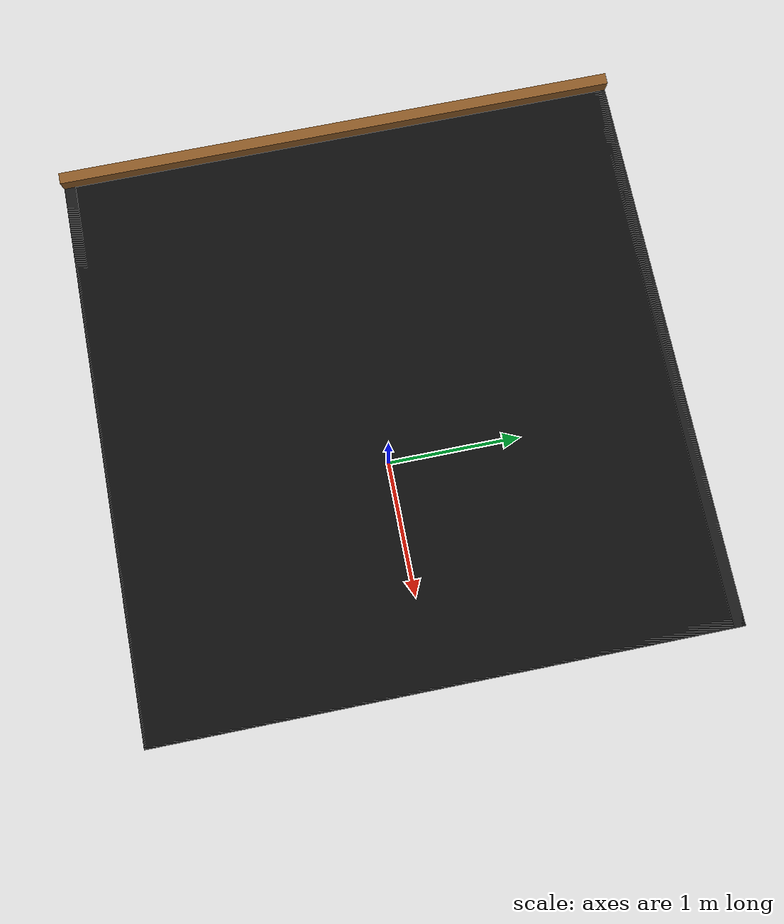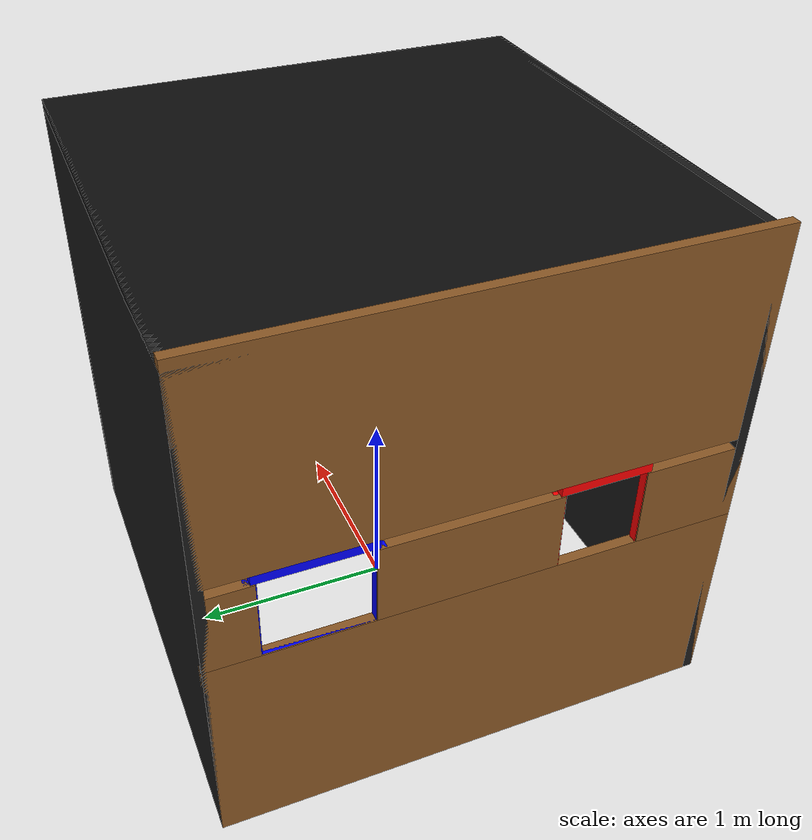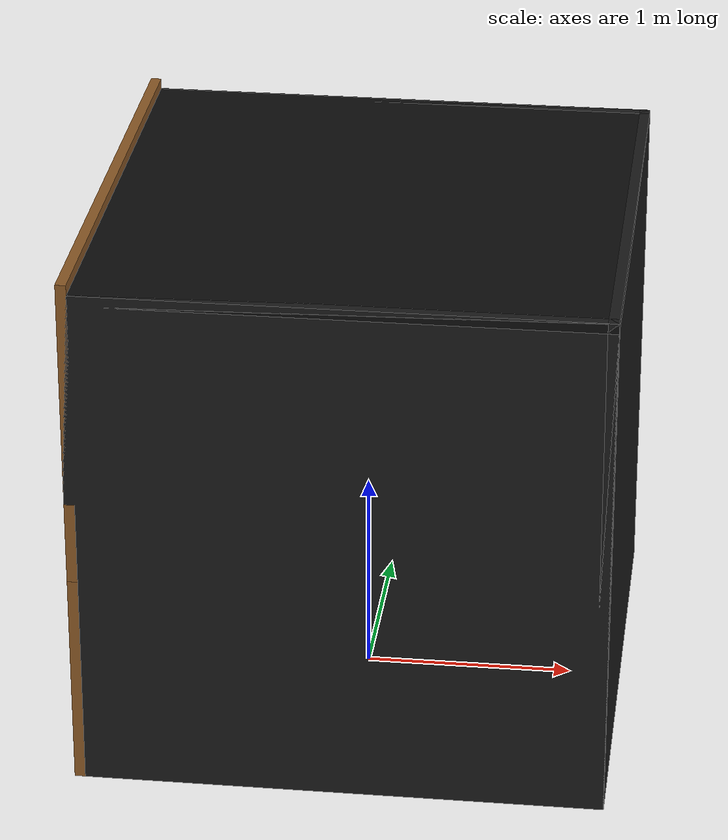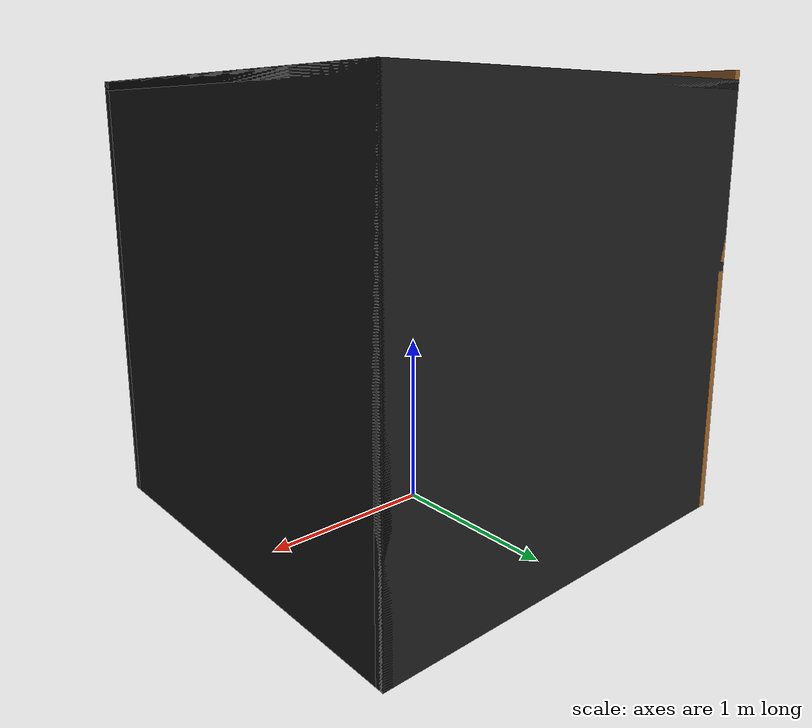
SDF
<?xml version="1.0" ?>
<sdf version="1.6">
  <model name="dark_room">
    <static>true</static>

    <!-- ==================== FRONT WALL (with windows) ==================== -->
    <!-- Wall is at local x = -1.25, windows face +x direction -->

    <!-- Bottom strip: full width, below both windows -->
    <link name="front_bottom">
      <pose>-1.225 0 0.525 0 0 0</pose>
      <visual name="vis">
        <geometry><box><size>0.05 2.5 1.05</size></box></geometry>
        <material><ambient>0.55 0.35 0.15 1</ambient><diffuse>0.55 0.35 0.15 1</diffuse></material>
      </visual>
      <collision name="col">
        <geometry><box><size>0.05 2.5 1.05</size></box></geometry>
      </collision>
    </link>

    <!-- Top strip: full width, above both windows -->
    <link name="front_top">
      <pose>-1.225 0 2.025 0 0 0</pose>
      <visual name="vis">
        <geometry><box><size>0.05 2.5 1.05</size></box></geometry>
        <material><ambient>0.55 0.35 0.15 1</ambient><diffuse>0.55 0.35 0.15 1</diffuse></material>
      </visual>
      <collision name="col">
        <geometry><box><size>0.05 2.5 1.05</size></box></geometry>
      </collision>
    </link>

    <!-- Left panel: solid, left of red window -->
    <!-- Red window spans y: -0.75 to -0.35, width = 0.40m -->
    <link name="front_left">
      <pose>-1.225 -1.0 1.25 0 0 0</pose>
      <visual name="vis">
        <geometry><box><size>0.05 0.5 0.40</size></box></geometry>
        <material><ambient>0.55 0.35 0.15 1</ambient><diffuse>0.55 0.35 0.15 1</diffuse></material>
      </visual>
      <collision name="col">
        <geometry><box><size>0.05 0.5 0.40</size></box></geometry>
      </collision>
    </link>

    <!-- Middle panel: between red and blue windows -->
    <!-- Between y=-0.35 and y=0.50, width = 0.85m -->
    <link name="front_middle">
      <pose>-1.225 0.075 1.25 0 0 0</pose>
      <visual name="vis">
        <geometry><box><size>0.05 0.85 0.40</size></box></geometry>
        <material><ambient>0.55 0.35 0.15 1</ambient><diffuse>0.55 0.35 0.15 1</diffuse></material>
      </visual>
      <collision name="col">
        <geometry><box><size>0.05 0.85 0.40</size></box></geometry>
      </collision>
    </link>

    <!-- Right panel: right of blue window -->
    <!-- Blue window spans y: 0.50 to 1.00, width = 0.50m -->
    <link name="front_right">
      <pose>-1.225 1.125 1.25 0 0 0</pose>
      <visual name="vis">
        <geometry><box><size>0.05 0.25 0.40</size></box></geometry>
        <material><ambient>0.55 0.35 0.15 1</ambient><diffuse>0.55 0.35 0.15 1</diffuse></material>
      </visual>
      <collision name="col">
        <geometry><box><size>0.05 0.25 0.40</size></box></geometry>
      </collision>
    </link>

    <!-- ==================== WINDOW FRAMES ==================== -->

    <!-- Red window frame (400x400mm opening) -->
    <!-- Top border -->
    <link name="red_win_top">
      <pose>-1.225 -0.55 1.475 0 0 0</pose>
      <visual name="vis">
        <geometry><box><size>0.04 0.44 0.05</size></box></geometry>
        <material><ambient>1 0 0 1</ambient><diffuse>1 0 0 1</diffuse></material>
      </visual>
      <collision name="col"><geometry><box><size>0.04 0.44 0.05</size></box></geometry></collision>
    </link>
    <!-- Bottom border -->
    <link name="red_win_bot">
      <pose>-1.225 -0.55 1.025 0 0 0</pose>
      <visual name="vis">
        <geometry><box><size>0.04 0.44 0.05</size></box></geometry>
        <material><ambient>1 0 0 1</ambient><diffuse>1 0 0 1</diffuse></material>
      </visual>
      <collision name="col"><geometry><box><size>0.04 0.44 0.05</size></box></geometry></collision>
    </link>
    <!-- Left border -->
    <link name="red_win_left">
      <pose>-1.225 -0.77 1.25 0 0 0</pose>
      <visual name="vis">
        <geometry><box><size>0.04 0.05 0.40</size></box></geometry>
        <material><ambient>1 0 0 1</ambient><diffuse>1 0 0 1</diffuse></material>
      </visual>
      <collision name="col"><geometry><box><size>0.04 0.05 0.40</size></box></geometry></collision>
    </link>
    <!-- Right border -->
    <link name="red_win_right">
      <pose>-1.225 -0.33 1.25 0 0 0</pose>
      <visual name="vis">
        <geometry><box><size>0.04 0.05 0.40</size></box></geometry>
        <material><ambient>1 0 0 1</ambient><diffuse>1 0 0 1</diffuse></material>
      </visual>
      <collision name="col"><geometry><box><size>0.04 0.05 0.40</size></box></geometry></collision>
    </link>

    <!-- Blue window frame (500x400mm opening) -->
    <!-- Top border -->
    <link name="blue_win_top">
      <pose>-1.225 0.75 1.475 0 0 0</pose>
      <visual name="vis">
        <geometry><box><size>0.04 0.54 0.05</size></box></geometry>
        <material><ambient>0 0 1 1</ambient><diffuse>0 0 1 1</diffuse></material>
      </visual>
      <collision name="col"><geometry><box><size>0.04 0.54 0.05</size></box></geometry></collision>
    </link>
    <!-- Bottom border -->
    <link name="blue_win_bot">
      <pose>-1.225 0.75 1.025 0 0 0</pose>
      <visual name="vis">
        <geometry><box><size>0.04 0.54 0.05</size></box></geometry>
        <material><ambient>0 0 1 1</ambient><diffuse>0 0 1 1</diffuse></material>
      </visual>
      <collision name="col"><geometry><box><size>0.04 0.54 0.05</size></box></geometry></collision>
    </link>
    <!-- Left border -->
    <link name="blue_win_left">
      <pose>-1.225 0.48 1.25 0 0 0</pose>
      <visual name="vis">
        <geometry><box><size>0.04 0.05 0.40</size></box></geometry>
        <material><ambient>0 0 1 1</ambient><diffuse>0 0 1 1</diffuse></material>
      </visual>
      <collision name="col"><geometry><box><size>0.04 0.05 0.40</size></box></geometry></collision>
    </link>
    <!-- Right border -->
    <link name="blue_win_right">
      <pose>-1.225 1.02 1.25 0 0 0</pose>
      <visual name="vis">
        <geometry><box><size>0.04 0.05 0.40</size></box></geometry>
        <material><ambient>0 0 1 1</ambient><diffuse>0 0 1 1</diffuse></material>
      </visual>
      <collision name="col"><geometry><box><size>0.04 0.05 0.40</size></box></geometry></collision>
    </link>

    <!-- ==================== REMAINING WALLS ==================== -->

    <!-- Back wall (solid) -->
    <link name="wall_back">
      <pose>1.225 0 1.25 0 0 0</pose>
      <visual name="vis">
        <geometry><box><size>0.05 2.5 2.5</size></box></geometry>
        <material><ambient>0.1 0.1 0.1 1</ambient><diffuse>0.1 0.1 0.1 1</diffuse></material>
      </visual>
      <collision name="col"><geometry><box><size>0.05 2.5 2.5</size></box></geometry></collision>
    </link>

    <!-- Left wall -->
    <link name="wall_left">
      <pose>0 -1.225 1.25 0 0 0</pose>
      <visual name="vis">
        <geometry><box><size>2.5 0.05 2.5</size></box></geometry>
        <material><ambient>0.1 0.1 0.1 1</ambient><diffuse>0.1 0.1 0.1 1</diffuse></material>
      </visual>
      <collision name="col"><geometry><box><size>2.5 0.05 2.5</size></box></geometry></collision>
    </link>

    <!-- Right wall -->
    <link name="wall_right">
      <pose>0 1.225 1.25 0 0 0</pose>
      <visual name="vis">
        <geometry><box><size>2.5 0.05 2.5</size></box></geometry>
        <material><ambient>0.1 0.1 0.1 1</ambient><diffuse>0.1 0.1 0.1 1</diffuse></material>
      </visual>
      <collision name="col"><geometry><box><size>2.5 0.05 2.5</size></box></geometry></collision>
    </link>

    <!-- Ceiling -->
    <link name="ceiling">
      <pose>0 0 2.475 0 0 0</pose>
      <visual name="vis">
        <geometry><box><size>2.5 2.5 0.05</size></box></geometry>
        <material><ambient>0.05 0.05 0.05 1</ambient><diffuse>0.05 0.05 0.05 1</diffuse></material>
      </visual>
      <collision name="col"><geometry><box><size>2.5 2.5 0.05</size></box></geometry></collision>
    </link>

    <!-- ==================== INTERIOR LIGHT (very dim) ==================== -->
    <light name="interior_light" type="point">
      <pose>0 0 2.2 0 0 0</pose>
      <diffuse>0.05 0.05 0.05 1</diffuse>    <!-- very dark -->
      <specular>0 0 0 1</specular>
      <attenuation>
        <range>3</range>
        <linear>0.5</linear>
        <constant>0.8</constant>
      </attenuation>
      <cast_shadows>false</cast_shadows>
    </light>

    <!-- ==================== BABY PLACEHOLDERS ==================== -->
    <!-- Reposition these on competition day -->

    <link name="baby_1">
      <pose>0.5 0.3 0.2 0 0 0</pose>
      <visual name="vis">
        <geometry><cylinder><radius>0.1</radius><length>0.35</length></cylinder></geometry>
        <material><ambient>0.9 0.8 0.7 1</ambient></material>
      </visual>
    </link>

    <link name="baby_2">
      <pose>-0.3 -0.4 0.2 0 0 0</pose>
      <visual name="vis">
        <geometry><cylinder><radius>0.1</radius><length>0.35</length></cylinder></geometry>
        <material><ambient>0.9 0.8 0.7 1</ambient></material>
      </visual>
    </link>

  </model>
</sdf>
